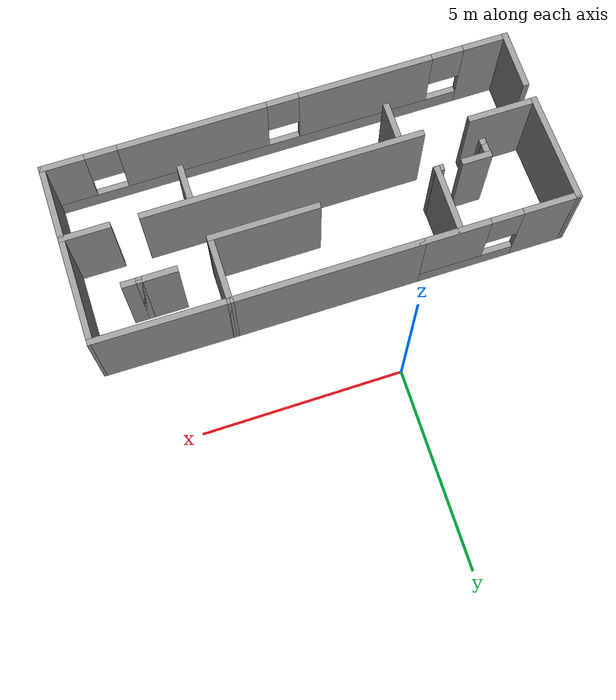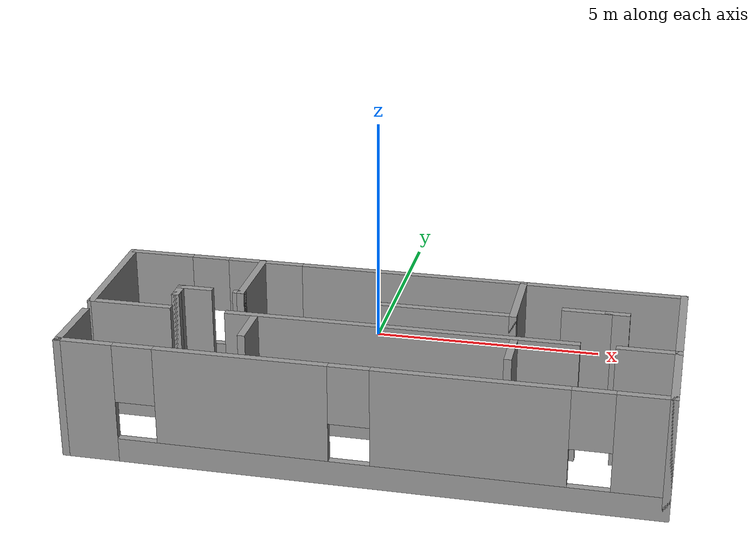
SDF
<?xml version='1.0'?>
<sdf version='1.6'>
<world name='default'>
  <light name='sun' type='directional'>
      <cast_shadows>1</cast_shadows>
      <pose frame=''>0 0 10 0 -0 0</pose>
      <diffuse>0.8 0.8 0.8 1</diffuse>
      <specular>0.2 0.2 0.2 1</specular>
      <attenuation>
        <range>1000</range>
        <constant>0.9</constant>
        <linear>0.01</linear>
        <quadratic>0.001</quadratic>
      </attenuation>
      <direction>-0.5 0.1 -0.9</direction>
   </light>
  <model name='buraqWorld'>
    <pose frame=''>0.919102 -4.39387 0 0 -0 0</pose>
    <link name='Wall_0'>
      <pose frame=''>-3.9341 2.23387 0 0 -0 0</pose>
      <visual name='Wall_0_Visual_0'>
        <pose frame=''>-1.2825 0 1.25 0 -0 0</pose>
        <geometry>
          <box>
            <size>1.435 0.15 2.5</size>
          </box>
        </geometry>
        <material>
          <script>
            <uri>file://media/materials/scripts/gazebo.material</uri>
            <name>Gazebo/Grey</name>
          </script>
          <ambient>1 1 1 1</ambient>
        </material>
        <meta>
          <layer>0</layer>
        </meta>
      </visual>
      <collision name='Wall_0_Collision_0'>
        <geometry>
          <box>
            <size>1.435 0.15 2.5</size>
          </box>
        </geometry>
        <pose frame=''>-1.2825 0 1.25 0 -0 0</pose>
      </collision>
      <visual name='Wall_0_Visual_1'>
        <pose frame=''>0.7175 0 0.25 0 -0 0</pose>
        <geometry>
          <box>
            <size>2.565 0.15 0.5</size>
          </box>
        </geometry>
        <material>
          <script>
            <uri>file://media/materials/scripts/gazebo.material</uri>
            <name>Gazebo/Grey</name>
          </script>
          <ambient>1 1 1 1</ambient>
        </material>
        <meta>
          <layer>0</layer>
        </meta>
      </visual>
      <collision name='Wall_0_Collision_1'>
        <geometry>
          <box>
            <size>2.565 0.15 0.5</size>
          </box>
        </geometry>
        <pose frame=''>0.7175 0 0.25 0 -0 0</pose>
      </collision>
      <visual name='Wall_0_Visual_2'>
        <pose frame=''>1.1175 0 1.5 0 -0 0</pose>
        <geometry>
          <box>
            <size>1.765 0.15 2</size>
          </box>
        </geometry>
        <material>
          <script>
            <uri>file://media/materials/scripts/gazebo.material</uri>
            <name>Gazebo/Grey</name>
          </script>
          <ambient>1 1 1 1</ambient>
        </material>
        <meta>
          <layer>0</layer>
        </meta>
      </visual>
      <collision name='Wall_0_Collision_2'>
        <geometry>
          <box>
            <size>1.765 0.15 2</size>
          </box>
        </geometry>
        <pose frame=''>1.1175 0 1.5 0 -0 0</pose>
      </collision>
      <visual name='Wall_0_Visual_3'>
        <pose frame=''>-0.165 0 1.9 0 -0 0</pose>
        <geometry>
          <box>
            <size>0.8 0.15 1.2</size>
          </box>
        </geometry>
        <material>
          <script>
            <uri>file://media/materials/scripts/gazebo.material</uri>
            <name>Gazebo/Grey</name>
          </script>
          <ambient>1 1 1 1</ambient>
        </material>
        <meta>
          <layer>0</layer>
        </meta>
      </visual>
      <collision name='Wall_0_Collision_3'>
        <geometry>
          <box>
            <size>0.8 0.15 1.2</size>
          </box>
        </geometry>
        <pose frame=''>-0.165 0 1.9 0 -0 0</pose>
      </collision>
    </link>
    <link name='Wall_10'>
      <collision name='Wall_10_Collision'>
        <geometry>
          <box>
            <size>0.75 0.15 2.5</size>
          </box>
        </geometry>
        <pose frame=''>0 0 1.25 0 -0 0</pose>
      </collision>
      <visual name='Wall_10_Visual'>
        <pose frame=''>0 0 1.25 0 -0 0</pose>
        <geometry>
          <box>
            <size>0.75 0.15 2.5</size>
          </box>
        </geometry>
        <material>
          <script>
            <uri>file://media/materials/scripts/gazebo.material</uri>
            <name>Gazebo/Grey</name>
          </script>
          <ambient>1 1 1 1</ambient>
        </material>
        <meta>
          <layer>0</layer>
        </meta>
      </visual>
      <pose frame=''>-3.9391 0.613873 0 0 -0 3.14159</pose>
    </link>
    <link name='Wall_11'>
      <collision name='Wall_11_Collision'>
        <geometry>
          <box>
            <size>0.16 0.15 2.5</size>
          </box>
        </geometry>
        <pose frame=''>0 0 1.25 0 -0 0</pose>
      </collision>
      <visual name='Wall_11_Visual'>
        <pose frame=''>0 0 1.25 0 -0 0</pose>
        <geometry>
          <box>
            <size>0.16 0.15 2.5</size>
          </box>
        </geometry>
        <material>
          <script>
            <uri>file://media/materials/scripts/gazebo.material</uri>
            <name>Gazebo/Grey</name>
          </script>
          <ambient>1 1 1 1</ambient>
        </material>
        <meta>
          <layer>0</layer>
        </meta>
      </visual>
      <pose frame=''>-4.2341 0.613873 0 0 -0 0</pose>
    </link>
    <link name='Wall_12'>
      <collision name='Wall_12_Collision'>
        <geometry>
          <box>
            <size>0.5 0.15 2.5</size>
          </box>
        </geometry>
        <pose frame=''>0 0 1.25 0 -0 0</pose>
      </collision>
      <visual name='Wall_12_Visual'>
        <pose frame=''>0 0 1.25 0 -0 0</pose>
        <geometry>
          <box>
            <size>0.5 0.15 2.5</size>
          </box>
        </geometry>
        <material>
          <script>
            <uri>file://media/materials/scripts/gazebo.material</uri>
            <name>Gazebo/Grey</name>
          </script>
          <ambient>1 1 1 1</ambient>
        </material>
        <meta>
          <layer>0</layer>
        </meta>
      </visual>
      <pose frame=''>-4.2291 0.438873 0 0 -0 -1.5708</pose>
    </link>
    <link name='Wall_13'>
      <collision name='Wall_13_Collision'>
        <geometry>
          <box>
            <size>0.16 0.15 2.5</size>
          </box>
        </geometry>
        <pose frame=''>0 0 1.25 0 -0 0</pose>
      </collision>
      <visual name='Wall_13_Visual'>
        <pose frame=''>0 0 1.25 0 -0 0</pose>
        <geometry>
          <box>
            <size>0.16 0.15 2.5</size>
          </box>
        </geometry>
        <material>
          <script>
            <uri>file://media/materials/scripts/gazebo.material</uri>
            <name>Gazebo/Grey</name>
          </script>
          <ambient>1 1 1 1</ambient>
        </material>
        <meta>
          <layer>0</layer>
        </meta>
      </visual>
      <pose frame=''>-4.2241 0.263873 0 0 -0 0</pose>
    </link>
    <link name='Wall_15'>
      <collision name='Wall_15_Collision'>
        <geometry>
          <box>
            <size>1.75 0.15 2.5</size>
          </box>
        </geometry>
        <pose frame=''>0 0 1.25 0 -0 0</pose>
      </collision>
      <visual name='Wall_15_Visual'>
        <pose frame=''>0 0 1.25 0 -0 0</pose>
        <geometry>
          <box>
            <size>1.75 0.15 2.5</size>
          </box>
        </geometry>
        <material>
          <script>
            <uri>file://media/materials/scripts/gazebo.material</uri>
            <name>Gazebo/Grey</name>
          </script>
          <ambient>1 1 1 1</ambient>
        </material>
        <meta>
          <layer>0</layer>
        </meta>
      </visual>
      <pose frame=''>-4.9791 -0.386127 0 0 -0 3.14159</pose>
    </link>
    <link name='Wall_16'>
      <collision name='Wall_16_Collision'>
        <geometry>
          <box>
            <size>2.77122 0.15 2.5</size>
          </box>
        </geometry>
        <pose frame=''>0 0 1.25 0 -0 0</pose>
      </collision>
      <visual name='Wall_16_Visual'>
        <pose frame=''>0 0 1.25 0 -0 0</pose>
        <geometry>
          <box>
            <size>2.77122 0.15 2.5</size>
          </box>
        </geometry>
        <material>
          <script>
            <uri>file://media/materials/scripts/gazebo.material</uri>
            <name>Gazebo/Grey</name>
          </script>
          <ambient>1 1 1 1</ambient>
        </material>
        <meta>
          <layer>0</layer>
        </meta>
      </visual>
      <pose frame=''>-5.8191 0.923873 0 0 -0 1.60132</pose>
    </link>
    <link name='Wall_18'>
      <collision name='Wall_18_Collision'>
        <geometry>
          <box>
            <size>1.5 0.15 2.5</size>
          </box>
        </geometry>
        <pose frame=''>0 0 1.25 0 -0 0</pose>
      </collision>
      <visual name='Wall_18_Visual'>
        <pose frame=''>0 0 1.25 0 -0 0</pose>
        <geometry>
          <box>
            <size>1.5 0.15 2.5</size>
          </box>
        </geometry>
        <material>
          <script>
            <uri>file://media/materials/scripts/gazebo.material</uri>
            <name>Gazebo/Grey</name>
          </script>
          <ambient>1 1 1 1</ambient>
        </material>
        <meta>
          <layer>0</layer>
        </meta>
      </visual>
      <pose frame=''>-5.7391 -1.56113 0 0 -0 -1.5708</pose>
    </link>
    <link name='Wall_19'>
      <pose frame=''>0.060898 -2.23613 0 0 -0 0</pose>
      <visual name='Wall_19_Visual_0'>
        <pose frame=''>-5.2875 0 1.25 0 -0 0</pose>
        <geometry>
          <box>
            <size>1.175 0.15 2.5</size>
          </box>
        </geometry>
        <material>
          <script>
            <uri>file://media/materials/scripts/gazebo.material</uri>
            <name>Gazebo/Grey</name>
          </script>
          <ambient>1 1 1 1</ambient>
        </material>
        <meta>
          <layer>0</layer>
        </meta>
      </visual>
      <collision name='Wall_19_Collision_0'>
        <geometry>
          <box>
            <size>1.175 0.15 2.5</size>
          </box>
        </geometry>
        <pose frame=''>-5.2875 0 1.25 0 -0 0</pose>
      </collision>
      <visual name='Wall_19_Visual_1'>
        <pose frame=''>0.5875 0 0.25 0 -0 0</pose>
        <geometry>
          <box>
            <size>10.575 0.15 0.5</size>
          </box>
        </geometry>
        <material>
          <script>
            <uri>file://media/materials/scripts/gazebo.material</uri>
            <name>Gazebo/Grey</name>
          </script>
          <ambient>1 1 1 1</ambient>
        </material>
        <meta>
          <layer>0</layer>
        </meta>
      </visual>
      <collision name='Wall_19_Collision_1'>
        <geometry>
          <box>
            <size>10.575 0.15 0.5</size>
          </box>
        </geometry>
        <pose frame=''>0.5875 0 0.25 0 -0 0</pose>
      </collision>
      <visual name='Wall_19_Visual_2'>
        <pose frame=''>-2.205 0 1.5 0 -0 0</pose>
        <geometry>
          <box>
            <size>3.39 0.15 2</size>
          </box>
        </geometry>
        <material>
          <script>
            <uri>file://media/materials/scripts/gazebo.material</uri>
            <name>Gazebo/Grey</name>
          </script>
          <ambient>1 1 1 1</ambient>
        </material>
        <meta>
          <layer>0</layer>
        </meta>
      </visual>
      <collision name='Wall_19_Collision_2'>
        <geometry>
          <box>
            <size>3.39 0.15 2</size>
          </box>
        </geometry>
        <pose frame=''>-2.205 0 1.5 0 -0 0</pose>
      </collision>
      <visual name='Wall_19_Visual_3'>
        <pose frame=''>2.135 0 1.5 0 -0 0</pose>
        <geometry>
          <box>
            <size>3.69 0.15 2</size>
          </box>
        </geometry>
        <material>
          <script>
            <uri>file://media/materials/scripts/gazebo.material</uri>
            <name>Gazebo/Grey</name>
          </script>
          <ambient>1 1 1 1</ambient>
        </material>
        <meta>
          <layer>0</layer>
        </meta>
      </visual>
      <collision name='Wall_19_Collision_3'>
        <geometry>
          <box>
            <size>3.69 0.15 2</size>
          </box>
        </geometry>
        <pose frame=''>2.135 0 1.5 0 -0 0</pose>
      </collision>
      <visual name='Wall_19_Visual_4'>
        <pose frame=''>5.3275 0 1.5 0 -0 0</pose>
        <geometry>
          <box>
            <size>1.095 0.15 2</size>
          </box>
        </geometry>
        <material>
          <script>
            <uri>file://media/materials/scripts/gazebo.material</uri>
            <name>Gazebo/Grey</name>
          </script>
          <ambient>1 1 1 1</ambient>
        </material>
        <meta>
          <layer>0</layer>
        </meta>
      </visual>
      <collision name='Wall_19_Collision_4'>
        <geometry>
          <box>
            <size>1.095 0.15 2</size>
          </box>
        </geometry>
        <pose frame=''>5.3275 0 1.5 0 -0 0</pose>
      </collision>
      <visual name='Wall_19_Visual_5'>
        <pose frame=''>-4.3 0 1.9 0 -0 0</pose>
        <geometry>
          <box>
            <size>0.8 0.15 1.2</size>
          </box>
        </geometry>
        <material>
          <script>
            <uri>file://media/materials/scripts/gazebo.material</uri>
            <name>Gazebo/Grey</name>
          </script>
          <ambient>1 1 1 1</ambient>
        </material>
        <meta>
          <layer>0</layer>
        </meta>
      </visual>
      <collision name='Wall_19_Collision_5'>
        <geometry>
          <box>
            <size>0.8 0.15 1.2</size>
          </box>
        </geometry>
        <pose frame=''>-4.3 0 1.9 0 -0 0</pose>
      </collision>
      <visual name='Wall_19_Visual_6'>
        <pose frame=''>-0.11 0 1.9 0 -0 0</pose>
        <geometry>
          <box>
            <size>0.8 0.15 1.2</size>
          </box>
        </geometry>
        <material>
          <script>
            <uri>file://media/materials/scripts/gazebo.material</uri>
            <name>Gazebo/Grey</name>
          </script>
          <ambient>1 1 1 1</ambient>
        </material>
        <meta>
          <layer>0</layer>
        </meta>
      </visual>
      <collision name='Wall_19_Collision_6'>
        <geometry>
          <box>
            <size>0.8 0.15 1.2</size>
          </box>
        </geometry>
        <pose frame=''>-0.11 0 1.9 0 -0 0</pose>
      </collision>
      <visual name='Wall_19_Visual_7'>
        <pose frame=''>4.38 0 1.9 0 -0 0</pose>
        <geometry>
          <box>
            <size>0.8 0.15 1.2</size>
          </box>
        </geometry>
        <material>
          <script>
            <uri>file://media/materials/scripts/gazebo.material</uri>
            <name>Gazebo/Grey</name>
          </script>
          <ambient>1 1 1 1</ambient>
        </material>
        <meta>
          <layer>0</layer>
        </meta>
      </visual>
      <collision name='Wall_19_Collision_7'>
        <geometry>
          <box>
            <size>0.8 0.15 1.2</size>
          </box>
        </geometry>
        <pose frame=''>4.38 0 1.9 0 -0 0</pose>
      </collision>
    </link>
    <link name='Wall_2'>
      <collision name='Wall_2_Collision'>
        <geometry>
          <box>
            <size>4.75 0.15 2.5</size>
          </box>
        </geometry>
        <pose frame=''>0 0 1.25 0 -0 0</pose>
      </collision>
      <visual name='Wall_2_Visual'>
        <pose frame=''>0 0 1.25 0 -0 0</pose>
        <geometry>
          <box>
            <size>4.75 0.15 2.5</size>
          </box>
        </geometry>
        <material>
          <script>
            <uri>file://media/materials/scripts/gazebo.material</uri>
            <name>Gazebo/Grey</name>
          </script>
          <ambient>1 1 1 1</ambient>
        </material>
        <meta>
          <layer>0</layer>
        </meta>
      </visual>
      <pose frame=''>0.290898 2.23387 0 0 -0 0</pose>
    </link>
    <link name='Wall_20'>
      <collision name='Wall_20_Collision'>
        <geometry>
          <box>
            <size>2 0.15 2.5</size>
          </box>
        </geometry>
        <pose frame=''>0 0 1.25 0 -0 0</pose>
      </collision>
      <visual name='Wall_20_Visual'>
        <pose frame=''>0 0 1.25 0 -0 0</pose>
        <geometry>
          <box>
            <size>2 0.15 2.5</size>
          </box>
        </geometry>
        <material>
          <script>
            <uri>file://media/materials/scripts/gazebo.material</uri>
            <name>Gazebo/Grey</name>
          </script>
          <ambient>1 1 1 1</ambient>
        </material>
        <meta>
          <layer>0</layer>
        </meta>
      </visual>
      <pose frame=''>5.8609 -1.31113 0 0 -0 1.5708</pose>
    </link>
    <link name='Wall_21'>
      <collision name='Wall_21_Collision'>
        <geometry>
          <box>
            <size>1.25 0.15 2.5</size>
          </box>
        </geometry>
        <pose frame=''>0 0 1.25 0 -0 0</pose>
      </collision>
      <visual name='Wall_21_Visual'>
        <pose frame=''>0 0 1.25 0 -0 0</pose>
        <geometry>
          <box>
            <size>1.25 0.15 2.5</size>
          </box>
        </geometry>
        <material>
          <script>
            <uri>file://media/materials/scripts/gazebo.material</uri>
            <name>Gazebo/Grey</name>
          </script>
          <ambient>1 1 1 1</ambient>
        </material>
        <meta>
          <layer>0</layer>
        </meta>
      </visual>
      <pose frame=''>5.3109 -0.386127 0 0 -0 3.14159</pose>
    </link>
    <link name='Wall_24'>
      <collision name='Wall_24_Collision'>
        <geometry>
          <box>
            <size>7 0.15 2.5</size>
          </box>
        </geometry>
        <pose frame=''>0 0 1.25 0 -0 0</pose>
      </collision>
      <visual name='Wall_24_Visual'>
        <pose frame=''>0 0 1.25 0 -0 0</pose>
        <geometry>
          <box>
            <size>7 0.15 2.5</size>
          </box>
        </geometry>
        <material>
          <script>
            <uri>file://media/materials/scripts/gazebo.material</uri>
            <name>Gazebo/Grey</name>
          </script>
          <ambient>1 1 1 1</ambient>
        </material>
        <meta>
          <layer>0</layer>
        </meta>
      </visual>
      <pose frame=''>0.515898 -0.386127 0 0 -0 3.14159</pose>
    </link>
    <link name='Wall_29'>
      <collision name='Wall_29_Collision'>
        <geometry>
          <box>
            <size>1 0.15 2.5</size>
          </box>
        </geometry>
        <pose frame=''>0 0 1.25 0 -0 0</pose>
      </collision>
      <visual name='Wall_29_Visual'>
        <pose frame=''>0 0 1.25 0 -0 0</pose>
        <geometry>
          <box>
            <size>1 0.15 2.5</size>
          </box>
        </geometry>
        <material>
          <script>
            <uri>file://media/materials/scripts/gazebo.material</uri>
            <name>Gazebo/Grey</name>
          </script>
          <ambient>1 1 1 1</ambient>
        </material>
        <meta>
          <layer>0</layer>
        </meta>
      </visual>
      <pose frame=''>4.0059 1.13387 0 0 -0 0</pose>
    </link>
    <link name='Wall_3'>
      <collision name='Wall_3_Collision'>
        <geometry>
          <box>
            <size>0.16 0.15 2.5</size>
          </box>
        </geometry>
        <pose frame=''>0 0 1.25 0 -0 0</pose>
      </collision>
      <visual name='Wall_3_Visual'>
        <pose frame=''>0 0 1.25 0 -0 0</pose>
        <geometry>
          <box>
            <size>0.16 0.15 2.5</size>
          </box>
        </geometry>
        <material>
          <script>
            <uri>file://media/materials/scripts/gazebo.material</uri>
            <name>Gazebo/Grey</name>
          </script>
          <ambient>1 1 1 1</ambient>
        </material>
        <meta>
          <layer>0</layer>
        </meta>
      </visual>
      <pose frame=''>2.5959 2.23387 0 0 -0 0</pose>
    </link>
    <link name='Wall_30'>
      <collision name='Wall_30_Collision'>
        <geometry>
          <box>
            <size>0.5 0.15 2.5</size>
          </box>
        </geometry>
        <pose frame=''>0 0 1.25 0 -0 0</pose>
      </collision>
      <visual name='Wall_30_Visual'>
        <pose frame=''>0 0 1.25 0 -0 0</pose>
        <geometry>
          <box>
            <size>0.5 0.15 2.5</size>
          </box>
        </geometry>
        <material>
          <script>
            <uri>file://media/materials/scripts/gazebo.material</uri>
            <name>Gazebo/Grey</name>
          </script>
          <ambient>1 1 1 1</ambient>
        </material>
        <meta>
          <layer>0</layer>
        </meta>
      </visual>
      <pose frame=''>4.6059 1.13387 0 0 -0 0</pose>
    </link>
    <link name='Wall_32'>
      <collision name='Wall_32_Collision'>
        <geometry>
          <box>
            <size>2.75 0.15 2.5</size>
          </box>
        </geometry>
        <pose frame=''>0 0 1.25 0 -0 0</pose>
      </collision>
      <visual name='Wall_32_Visual'>
        <pose frame=''>0 0 1.25 0 -0 0</pose>
        <geometry>
          <box>
            <size>2.75 0.15 2.5</size>
          </box>
        </geometry>
        <material>
          <script>
            <uri>file://media/materials/scripts/gazebo.material</uri>
            <name>Gazebo/Grey</name>
          </script>
          <ambient>1 1 1 1</ambient>
        </material>
        <meta>
          <layer>0</layer>
        </meta>
      </visual>
      <pose frame=''>5.8609 0.913873 0 0 -0 1.5708</pose>
    </link>
    <link name='Wall_33'>
      <collision name='Wall_33_Collision'>
        <geometry>
          <box>
            <size>3.41006 0.15 2.5</size>
          </box>
        </geometry>
        <pose frame=''>0 0 1.25 0 -0 0</pose>
      </collision>
      <visual name='Wall_33_Visual'>
        <pose frame=''>0 0 1.25 0 -0 0</pose>
        <geometry>
          <box>
            <size>3.41006 0.15 2.5</size>
          </box>
        </geometry>
        <material>
          <script>
            <uri>file://media/materials/scripts/gazebo.material</uri>
            <name>Gazebo/Grey</name>
          </script>
          <ambient>1 1 1 1</ambient>
        </material>
        <meta>
          <layer>0</layer>
        </meta>
      </visual>
      <pose frame=''>4.2309 2.22387 0 0 -0 3.13546</pose>
    </link>
    <link name='Wall_35'>
      <collision name='Wall_35_Collision'>
        <geometry>
          <box>
            <size>2.75 0.15 2.5</size>
          </box>
        </geometry>
        <pose frame=''>0 0 1.25 0 -0 0</pose>
      </collision>
      <visual name='Wall_35_Visual'>
        <pose frame=''>0 0 1.25 0 -0 0</pose>
        <geometry>
          <box>
            <size>2.75 0.15 2.5</size>
          </box>
        </geometry>
        <material>
          <script>
            <uri>file://media/materials/scripts/gazebo.material</uri>
            <name>Gazebo/Grey</name>
          </script>
          <ambient>1 1 1 1</ambient>
        </material>
        <meta>
          <layer>0</layer>
        </meta>
      </visual>
      <pose frame=''>1.3009 0.633873 0 0 -0 3.14159</pose>
    </link>
    <link name='Wall_37'>
      <collision name='Wall_37_Collision'>
        <geometry>
          <box>
            <size>1 0.15 2.5</size>
          </box>
        </geometry>
        <pose frame=''>0 0 1.25 0 -0 0</pose>
      </collision>
      <visual name='Wall_37_Visual'>
        <pose frame=''>0 0 1.25 0 -0 0</pose>
        <geometry>
          <box>
            <size>1 0.15 2.5</size>
          </box>
        </geometry>
        <material>
          <script>
            <uri>file://media/materials/scripts/gazebo.material</uri>
            <name>Gazebo/Grey</name>
          </script>
          <ambient>1 1 1 1</ambient>
        </material>
        <meta>
          <layer>0</layer>
        </meta>
      </visual>
      <pose frame=''>-2.3691 -0.881127 0 0 -0 -1.5708</pose>
    </link>
    <link name='Wall_39'>
      <collision name='Wall_39_Collision'>
        <geometry>
          <box>
            <size>1 0.15 2.5</size>
          </box>
        </geometry>
        <pose frame=''>0 0 1.25 0 -0 0</pose>
      </collision>
      <visual name='Wall_39_Visual'>
        <pose frame=''>0 0 1.25 0 -0 0</pose>
        <geometry>
          <box>
            <size>1 0.15 2.5</size>
          </box>
        </geometry>
        <material>
          <script>
            <uri>file://media/materials/scripts/gazebo.material</uri>
            <name>Gazebo/Grey</name>
          </script>
          <ambient>1 1 1 1</ambient>
        </material>
        <meta>
          <layer>0</layer>
        </meta>
      </visual>
      <pose frame=''>2.7609 -0.831127 0 0 -0 -1.5708</pose>
    </link>
    <link name='Wall_4'>
      <collision name='Wall_4_Collision'>
        <geometry>
          <box>
            <size>1.75 0.15 2.5</size>
          </box>
        </geometry>
        <pose frame=''>0 0 1.25 0 -0 0</pose>
      </collision>
      <visual name='Wall_4_Visual'>
        <pose frame=''>0 0 1.25 0 -0 0</pose>
        <geometry>
          <box>
            <size>1.75 0.15 2.5</size>
          </box>
        </geometry>
        <material>
          <script>
            <uri>file://media/materials/scripts/gazebo.material</uri>
            <name>Gazebo/Grey</name>
          </script>
          <ambient>1 1 1 1</ambient>
        </material>
        <meta>
          <layer>0</layer>
        </meta>
      </visual>
      <pose frame=''>2.6009 1.43387 0 0 -0 -1.5708</pose>
    </link>
    <link name='Wall_6'>
      <collision name='Wall_6_Collision'>
        <geometry>
          <box>
            <size>1.75 0.15 2.5</size>
          </box>
        </geometry>
        <pose frame=''>0 0 1.25 0 -0 0</pose>
      </collision>
      <visual name='Wall_6_Visual'>
        <pose frame=''>0 0 1.25 0 -0 0</pose>
        <geometry>
          <box>
            <size>1.75 0.15 2.5</size>
          </box>
        </geometry>
        <material>
          <script>
            <uri>file://media/materials/scripts/gazebo.material</uri>
            <name>Gazebo/Grey</name>
          </script>
          <ambient>1 1 1 1</ambient>
        </material>
        <meta>
          <layer>0</layer>
        </meta>
      </visual>
      <pose frame=''>-2.9591 1.40387 0 0 -0 -1.5708</pose>
    </link>
    <link name='Wall_7'>
      <collision name='Wall_7_Collision'>
        <geometry>
          <box>
            <size>0.16 0.15 2.5</size>
          </box>
        </geometry>
        <pose frame=''>0 0 1.25 0 -0 0</pose>
      </collision>
      <visual name='Wall_7_Visual'>
        <pose frame=''>0 0 1.25 0 -0 0</pose>
        <geometry>
          <box>
            <size>0.16 0.15 2.5</size>
          </box>
        </geometry>
        <material>
          <script>
            <uri>file://media/materials/scripts/gazebo.material</uri>
            <name>Gazebo/Grey</name>
          </script>
          <ambient>1 1 1 1</ambient>
        </material>
        <meta>
          <layer>0</layer>
        </meta>
      </visual>
      <pose frame=''>-2.9541 0.603873 0 0 -0 0</pose>
    </link>
    <link name='Wall_8'>
      <collision name='Wall_8_Collision'>
        <geometry>
          <box>
            <size>0.25 0.15 2.5</size>
          </box>
        </geometry>
        <pose frame=''>0 0 1.25 0 -0 0</pose>
      </collision>
      <visual name='Wall_8_Visual'>
        <pose frame=''>0 0 1.25 0 -0 0</pose>
        <geometry>
          <box>
            <size>0.25 0.15 2.5</size>
          </box>
        </geometry>
        <material>
          <script>
            <uri>file://media/materials/scripts/gazebo.material</uri>
            <name>Gazebo/Grey</name>
          </script>
          <ambient>1 1 1 1</ambient>
        </material>
        <meta>
          <layer>0</layer>
        </meta>
      </visual>
      <pose frame=''>-2.9991 0.603873 0 0 -0 3.14159</pose>
    </link>
    <static>1</static>
  </model>
 </world>
</sdf>
